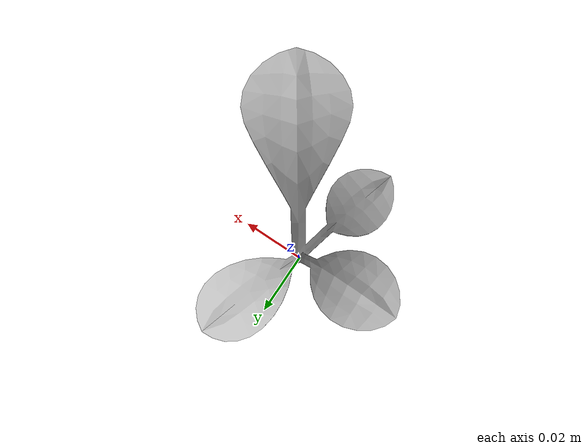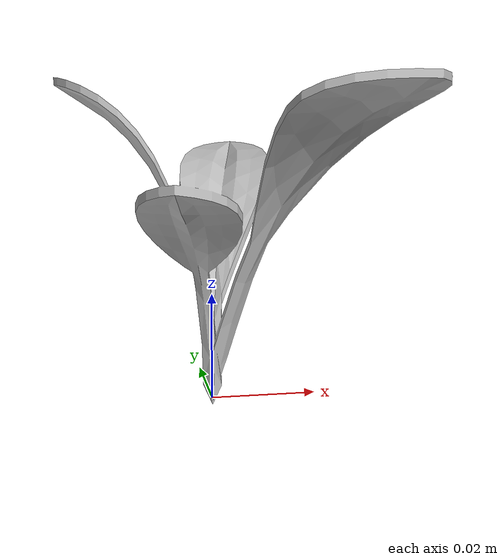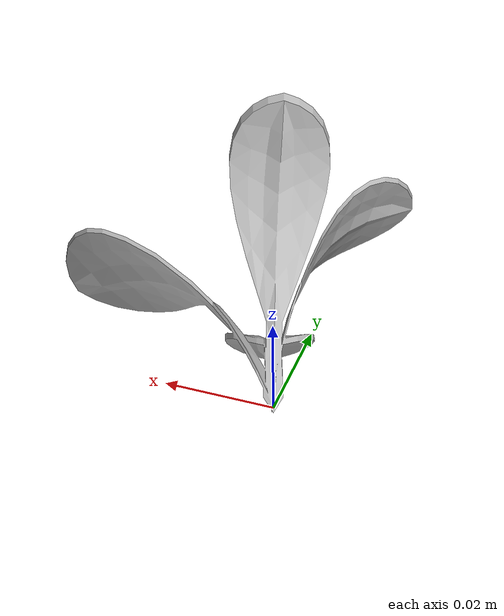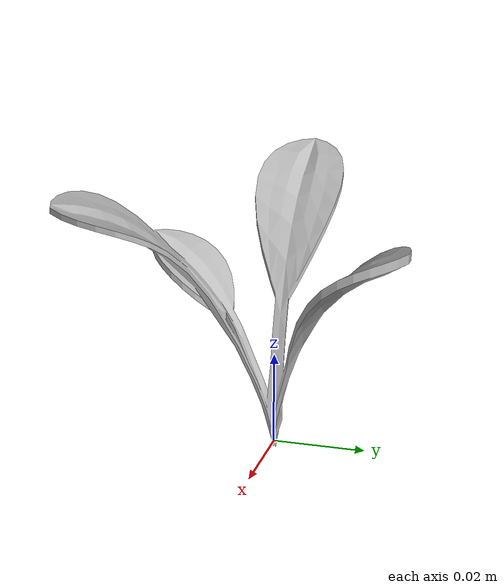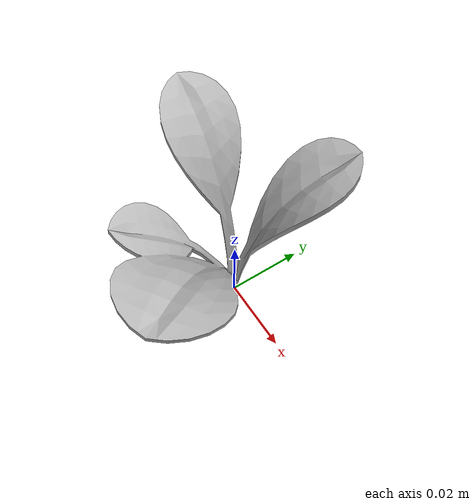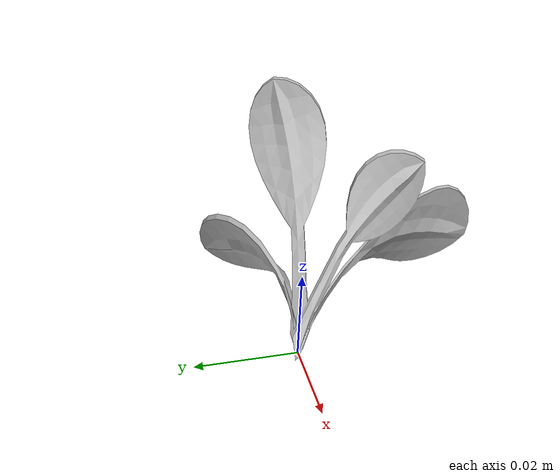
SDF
<sdf version="1.6">
  <model name="sugar_beet_1">
    <static>true</static>
    <link name="body">
      <visual name="visual">
        <geometry>
          <mesh>
            <uri>file:///sugar_beet_1/media/sugar_beet.dae</uri>
          </mesh>
        </geometry>
      </visual>
    </link>
  </model>
</sdf>
